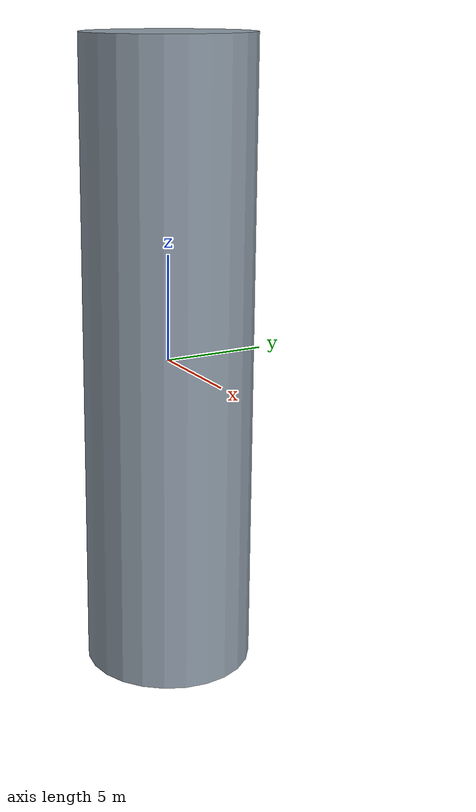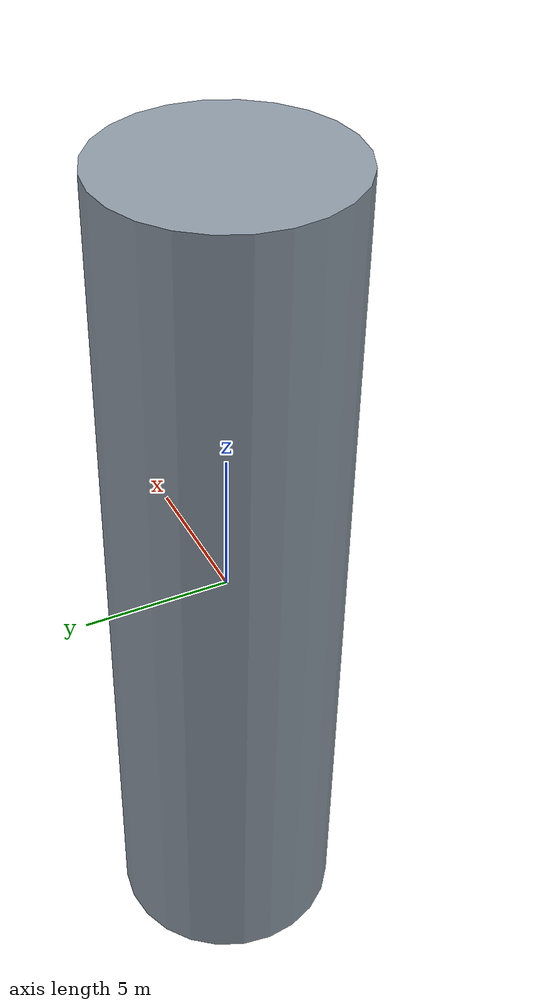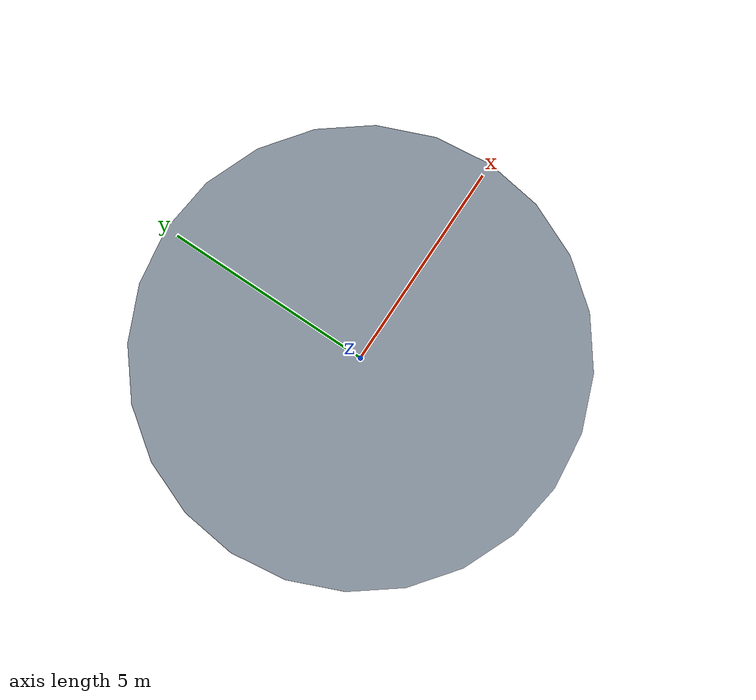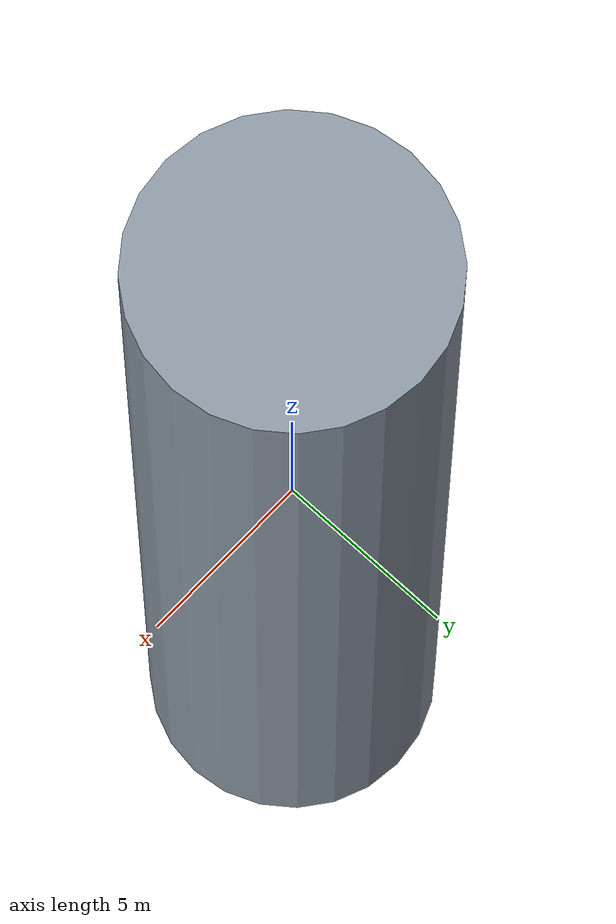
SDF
<?xml version="1.0" ?>
<sdf version="1.7">
  <model name="wind_tower_tube">
    <static>true</static>
    <link name="tube_link">
      <!-- Cilindro: radio 4 m, largo 30 m. Eje Z por defecto en SDF. -->
      <!-- La pose de spawn rota 90° en R para que el eje quede horizontal (Y). -->
      <visual name="visual">
        <geometry>
          <cylinder>
            <radius>4.0</radius>
            <length>30.0</length>
          </cylinder>
        </geometry>
        <material>
          <ambient>0.55 0.6 0.65 1</ambient>
          <diffuse>0.55 0.6 0.65 1</diffuse>
          <specular>0.2 0.2 0.2 1</specular>
        </material>
      </visual>
      <collision name="collision">
        <geometry>
          <cylinder>
            <radius>4.0</radius>
            <length>30.0</length>
          </cylinder>
        </geometry>
        <surface>
          <friction>
            <ode>
              <mu>0.8</mu>
              <mu2>0.8</mu2>
            </ode>
          </friction>
          <contact>
            <ode>
              <kp>1e6</kp>
              <kd>100</kd>
            </ode>
          </contact>
        </surface>
      </collision>
    </link>
  </model>
</sdf>
